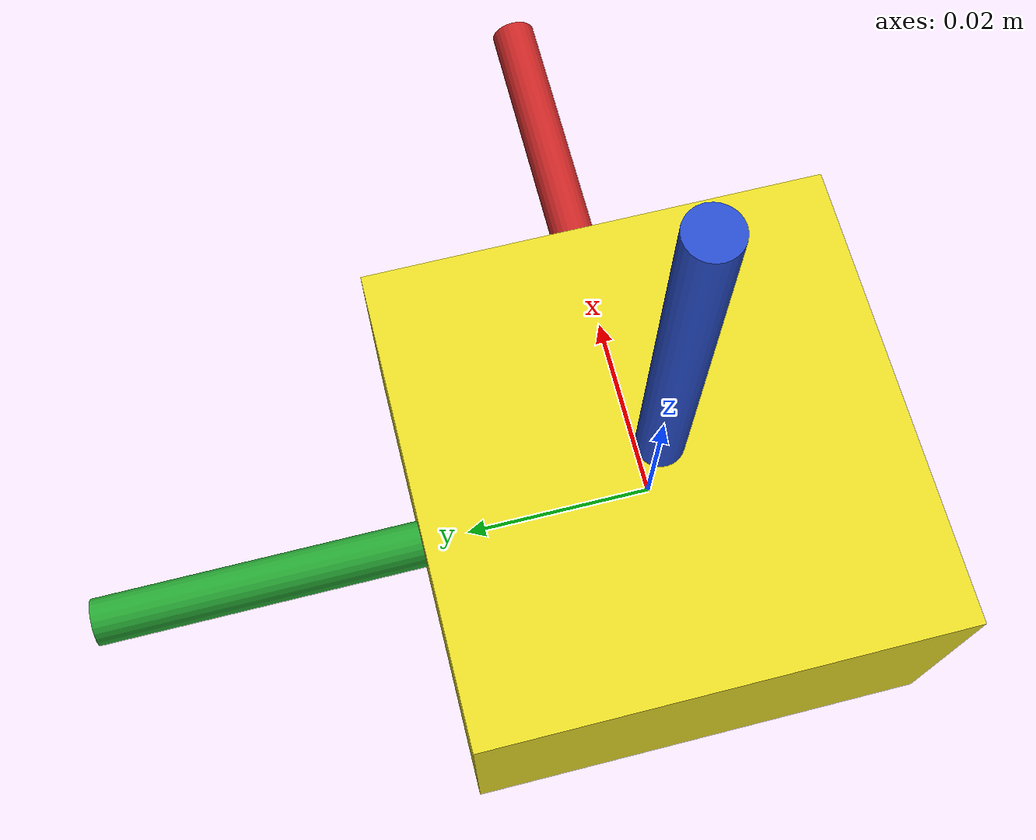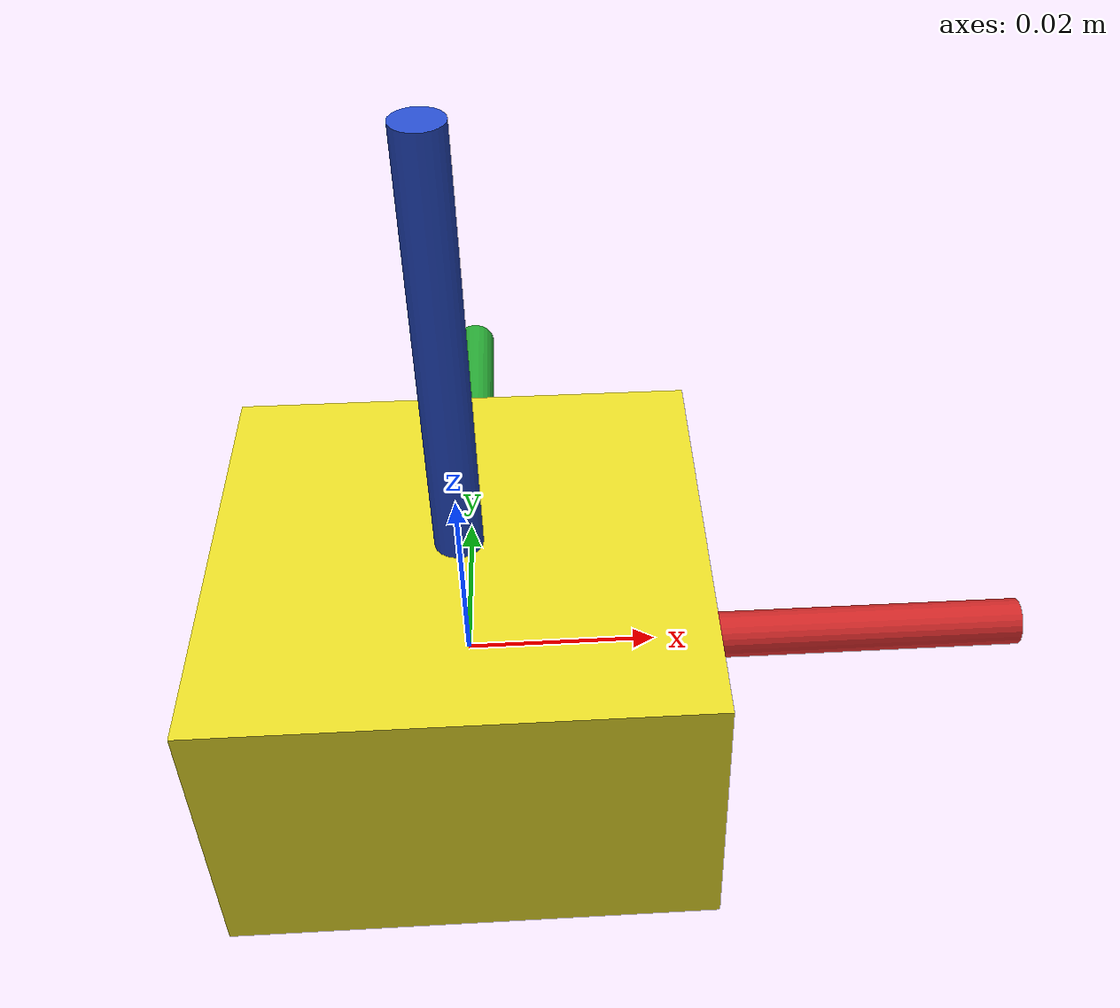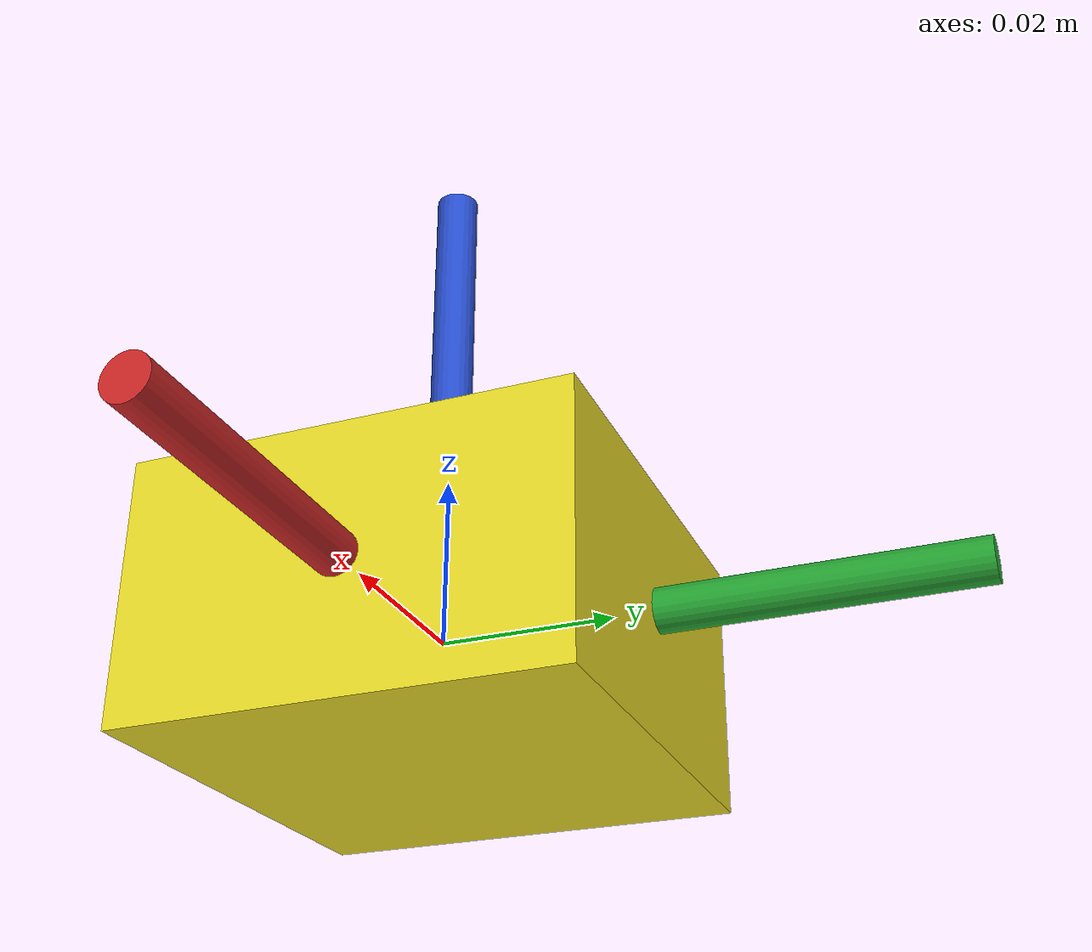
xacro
<?xml version='1.0' encoding='utf-8'?>
<robot xmlns:xacro="http://www.ros.org/wiki/xacro" name="imu">

  <link name="world"/>
  <xacro:include filename="$(find ros_robotic_skin)/robots/imu.xacro"/>

  <xacro:imu imu_id="0_est"/>
  <xacro:imu imu_id="1_est"/>
  <xacro:imu imu_id="2_est"/>
  <xacro:imu imu_id="3_est"/>
  <xacro:imu imu_id="4_est"/>
  <xacro:imu imu_id="5_est"/>
  <xacro:imu imu_id="6_est"/>
  <gazebo>
    <static>true</static>
  </gazebo>
</robot>

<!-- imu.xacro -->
<robot xmlns:xacro="http://www.ros.org/wiki/xacro" name="imu">

    <xacro:macro name="imu" params="imu_id:='0' xyz:='0 0 0' rpy:='0 0 0' gravity:='true' type:='fixed' freq:='100' connected_to:=''">
        <!-- Connect IMU to the world if not specified -->
        <xacro:if value="${connected_to == ''}">
            <joint name="imu${imu_id}_to_world" type="${type}">
                <!-- XYZ, RPY from parent Visual Origin (Center o Gravity) -->
                <!-- in this case it's 0 0 0-->
                <parent link="world" />
                <child link="imu_link${imu_id}" />
                <origin rpy="${rpy}" xyz="${xyz}"/>
            </joint>
        </xacro:if>

        <!-- Connect IMU to ${connected_to} if specified -->
        <xacro:if value="${connected_to != ''}">
            <joint name="imu${imu_id}_to_${connected_to}" type="${type}">
                <parent link="${connected_to}"/>
                <child link="imu_link${imu_id}"/>
                <origin rpy="${rpy}" xyz="${xyz}"/>
            </joint>
        </xacro:if>

        <!-- XYZ, RPY from the joint-->
        <!-- in this case it's imu_to_world${imu_id}-->
        <!-- To set the CoG to the joint, do not add any displacement -->
        <!-- To set the box base to the joint, add displacement-->
        <xacro:property name="boxxy" value="0.05"/>
        <xacro:property name="boxz" value="0.03"/>
        <xacro:property name="displacement" value="${boxz}"/>
        <link name="imu_link${imu_id}">
            <inertial>
                <origin xyz="0 0 0" rpy="0 0 0"/>
                <mass value="0.01"/>
                <inertia ixx="0.01" ixy="0.0" ixz="0.0" iyy="0.01" iyz="0.0" izz="0.01"/>
            </inertial>
            <visual>
                <origin xyz="0 0 0" rpy="0 0 0"/>
                <geometry>
                    <box size="${boxxy} ${boxxy} ${boxz}"/>
                </geometry>
            </visual>
        </link>

        <gazebo reference="imu_link${imu_id}">
            <material>Gazebo/YellowGlow</material>
            <gravity>${gravity}</gravity>
            <mu1>20</mu1>
            <mu2>20</mu2>
            <sensor name="imu_sensor${imu_id}" type="imu">
                <always_on>true</always_on>
                <update_rate>${freq}</update_rate>
                <visualize>true</visualize>
                <topic>__default_topic__</topic>
                <plugin filename="libgazebo_ros_imu_sensor.so" name="imu_plugin">
                    <topicName>imu_data${imu_id}</topicName>
                    <bodyName>imu_link${imu_id}</bodyName>
                    <updateRateHZ>${freq}</updateRateHZ>
                    <gaussianNoise>0.0</gaussianNoise>
                    <xyzOffset>0.0 0.0 0.0</xyzOffset>
                    <rpyOffset>0 0 0</rpyOffset>
                    <frameName>imu_link${imu_id}</frameName>
                </plugin>
                <pose>0 0 0 0 0 0</pose>
            </sensor>
        </gazebo>

        <!--                    AXIS                    -->
        <joint name="imu${imu_id}_to_xaxis" type="fixed">
            <parent link="imu_link${imu_id}"/>
            <child link="imu_link${imu_id}_xaxis"/>
            <origin rpy="0 1.57 0" xyz="0 0 0"/>
        </joint>
        <joint name="imu${imu_id}_to_yaxis" type="fixed">
            <parent link="imu_link${imu_id}"/>
            <child link="imu_link${imu_id}_yaxis"/>
            <origin rpy="-1.57 0 0" xyz="0 0 0"/>
        </joint>
        <joint name="imu${imu_id}_to_zaxis" type="fixed">
            <parent link="imu_link${imu_id}"/>
            <child link="imu_link${imu_id}_zaxis"/>
            <origin rpy="0 0 0" xyz="0 0 0"/>
        </joint>

        <link name="imu_link${imu_id}_xaxis">
            <inertial>
                <origin xyz="0 0 ${boxz}" rpy="0 0 0"/>
                <mass value="0.001"/>
                <inertia ixx="0.001" ixy="0.0" ixz="0.0" iyy="0.001" iyz="0.0" izz="0.001"/>
            </inertial>
            <visual>
                <origin xyz="0 0 ${boxz}" rpy="0 0 0"/>
                <geometry>
                    <cylinder radius="${boxxy/20}" length="${2*boxz}"/>
                </geometry>
            </visual>
        </link>
        <link name="imu_link${imu_id}_yaxis">
            <inertial>
                <origin xyz="0 0 ${boxz}" rpy="0 0 0"/>
                <mass value="0.001"/>
                <inertia ixx="0.001" ixy="0.0" ixz="0.0" iyy="0.001" iyz="0.0" izz="0.001"/>
            </inertial>
            <visual>
                <origin xyz="0 0 ${boxz}" rpy="0 0 0"/>
                <geometry>
                    <cylinder radius="${boxxy/20}" length="${2*boxz}"/>
                </geometry>
            </visual>
        </link>
        <link name="imu_link${imu_id}_zaxis">
            <inertial>
                <origin xyz="0 0 ${boxz}" rpy="0 0 0"/>
                <mass value="0.001"/>
                <inertia ixx="0.001" ixy="0.0" ixz="0.0" iyy="0.001" iyz="0.0" izz="0.001"/>
            </inertial>
            <visual>
                <origin xyz="0 0 ${boxz}" rpy="0 0 0"/>
                <geometry>
                    <cylinder radius="${boxxy/20}" length="${2*boxz}"/>
                </geometry>
            </visual>
        </link>
        <gazebo reference="imu_link${imu_id}_xaxis">
            <material>Gazebo/Red</material>
        </gazebo>
        <gazebo reference="imu_link${imu_id}_yaxis">
            <material>Gazebo/Green</material>
        </gazebo>
        <gazebo reference="imu_link${imu_id}_zaxis">
            <material>Gazebo/Blue</material>
        </gazebo>
    </xacro:macro>
</robot>
